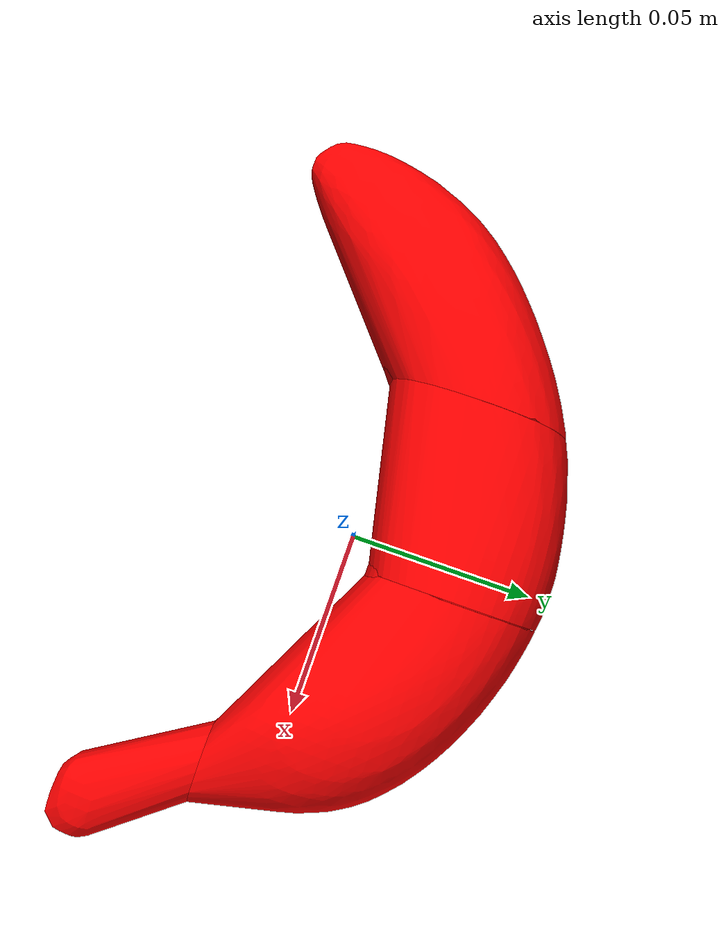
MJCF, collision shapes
<?xml version="1.0" ?>
<mujoco model="yellow_banana">
	<compiler meshdir="yellow_banana/meshes" texturedir="yellow_banana/textures" angle="radian" autolimits="true" balanceinertia="true" boundmass="0.000001" boundinertia="0.000001"/>
	<default>
		<default class="visual">
			<geom contype="0" conaffinity="0"/>
		</default>
		<default class="collision">
			<geom rgba="1.0 0.0 0.0 0.0"/>
		</default>
	</default>
	<asset>
		<mesh name="YellowBananaEndocarp" file="obj/YellowBananaEndocarp.obj" scale="1.0 1.0 1.0"/>
		<mesh name="YellowBananaEndocarp_001" file="stl/YellowBananaEndocarp_001.stl" scale="1.0 1.0 1.0"/>
		<mesh name="YellowBananaEndocarp_002" file="stl/YellowBananaEndocarp_002.stl" scale="1.0 1.0 1.0"/>
		<mesh name="YellowBananaEndocarp_003" file="stl/YellowBananaEndocarp_003.stl" scale="1.0 1.0 1.0"/>
		<mesh name="YellowBananaEndocarp_004" file="stl/YellowBananaEndocarp_004.stl" scale="1.0 1.0 1.0"/>
		<mesh name="YellowBananaExocarp" file="obj/YellowBananaExocarp.obj" scale="1.0 1.0 1.0"/>
		<mesh name="YellowBananaExocarp_001" file="stl/YellowBananaExocarp_001.stl" scale="1.0 1.0 1.0"/>
		<mesh name="YellowBananaExocarp_002" file="stl/YellowBananaExocarp_002.stl" scale="1.0 1.0 1.0"/>
		<mesh name="YellowBananaExocarp_003" file="stl/YellowBananaExocarp_003.stl" scale="1.0 1.0 1.0"/>
		<mesh name="YellowBananaExocarp_004" file="stl/YellowBananaExocarp_004.stl" scale="1.0 1.0 1.0"/>
		<mesh name="YellowBananaFlesh" file="obj/YellowBananaFlesh.obj" scale="1.0 1.0 1.0"/>
		<mesh name="YellowBananaFlesh_001" file="stl/YellowBananaFlesh_001.stl" scale="1.0 1.0 1.0"/>
		<mesh name="YellowBananaFlesh_002" file="stl/YellowBananaFlesh_002.stl" scale="1.0 1.0 1.0"/>
		<mesh name="YellowBananaFlesh_003" file="stl/YellowBananaFlesh_003.stl" scale="1.0 1.0 1.0"/>
		<material name="M_YellowBananaEndocarp" texture="T_YellowBananaEndocarp"/>
		<material name="M_YellowBananaExocarp" texture="T_YellowBananaExocarp"/>
		<material name="M_YellowBananaFlesh" texture="T_YellowBananaFlesh"/>
		<texture name="T_YellowBananaEndocarp" type="2d" file="T_YellowBananaEndocarp.png"/>
		<texture name="T_YellowBananaExocarp" type="2d" file="T_YellowBananaExocarp.png"/>
		<texture name="T_YellowBananaFlesh" type="2d" file="T_YellowBananaFlesh.png"/>
	</asset>
	<worldbody>
		<body name="yellow_banana" pos="0.0 0.0 0.0" quat="1.0 0.0 0.0 0.0">
			<body name="yellow_banana_endocarp" pos="0.0 0.0 0.0" quat="1.0 0.0 0.0 0.0">
				<inertial mass="0.003866082290187478" pos="-0.01240614801645279 0.013213612139225006 -0.0007500060019083321" quat="0.999386191368103 0.014309662394225597 -0.003567987121641636 0.03177691251039505" diaginertia="3.1374904665426584e-06 1.1440144589869305e-05 1.3253933502710424e-05"/>
				<geom name="YellowBananaEndocarp" type="mesh" pos="0.0 0.0 0.0" quat="1.0 0.0 0.0 0.0" mesh="YellowBananaEndocarp" material="M_YellowBananaEndocarp" class="visual"/>
				<geom name="YellowBananaEndocarp_001" type="mesh" pos="0.0 0.0 0.0" quat="1.0 0.0 0.0 0.0" mesh="YellowBananaEndocarp_001" class="collision"/>
				<geom name="YellowBananaEndocarp_002" type="mesh" pos="0.0 0.0 0.0" quat="1.0 0.0 0.0 0.0" mesh="YellowBananaEndocarp_002" class="collision"/>
				<geom name="YellowBananaEndocarp_003" type="mesh" pos="0.0 0.0 0.0" quat="1.0 0.0 0.0 0.0" mesh="YellowBananaEndocarp_003" class="collision"/>
				<geom name="YellowBananaEndocarp_004" type="mesh" pos="0.0 0.0 0.0" quat="1.0 0.0 0.0 0.0" mesh="YellowBananaEndocarp_004" class="collision"/>
			</body>
			<body name="yellow_banana_flesh" pos="0.0 0.0 0.0" quat="1.0 0.0 0.0 0.0">
				<inertial mass="0.16765236854553223" pos="-0.011863026767969131 0.016230249777436256 -0.00047982129035517573" quat="0.999794602394104 0.009690002538263798 -0.0033315131440758705 0.017485249787569046" diaginertia="0.00010836349247256294 0.00039412116166204214 0.00047479759086854756"/>
				<geom name="YellowBananaFlesh" type="mesh" pos="0.0 0.0 0.0" quat="1.0 0.0 0.0 0.0" mesh="YellowBananaFlesh" material="M_YellowBananaFlesh" class="visual"/>
				<geom name="YellowBananaFlesh_001" type="mesh" pos="0.0 0.0 0.0" quat="1.0 0.0 0.0 0.0" mesh="YellowBananaFlesh_001" class="collision"/>
				<geom name="YellowBananaFlesh_002" type="mesh" pos="0.0 0.0 0.0" quat="1.0 0.0 0.0 0.0" mesh="YellowBananaFlesh_002" class="collision"/>
				<geom name="YellowBananaFlesh_003" type="mesh" pos="0.0 0.0 0.0" quat="1.0 0.0 0.0 0.0" mesh="YellowBananaFlesh_003" class="collision"/>
			</body>
			<body name="yellow_banana_exocarp" pos="0.0 0.0 0.0" quat="1.0 0.0 0.0 0.0">
				<inertial mass="0.014691420830786228" pos="-0.0066825891844928265 0.00984877534210682 -0.001081103808246553" quat="0.9995599985122681 0.026058413088321686 0.0016423529013991356 -0.014072651974856853" diaginertia="1.3276352547109127e-05 4.834550782106817e-05 5.636810965370387e-05"/>
				<geom name="YellowBananaExocarp" type="mesh" pos="0.0 0.0 0.0" quat="1.0 0.0 0.0 0.0" mesh="YellowBananaExocarp" material="M_YellowBananaExocarp" class="visual"/>
				<geom name="YellowBananaExocarp_001" type="mesh" pos="0.0 0.0 0.0" quat="1.0 0.0 0.0 0.0" mesh="YellowBananaExocarp_001" class="collision"/>
				<geom name="YellowBananaExocarp_002" type="mesh" pos="0.0 0.0 0.0" quat="1.0 0.0 0.0 0.0" mesh="YellowBananaExocarp_002" class="collision"/>
				<geom name="YellowBananaExocarp_003" type="mesh" pos="0.0 0.0 0.0" quat="1.0 0.0 0.0 0.0" mesh="YellowBananaExocarp_003" class="collision"/>
				<geom name="YellowBananaExocarp_004" type="mesh" pos="0.0 0.0 0.0" quat="1.0 0.0 0.0 0.0" mesh="YellowBananaExocarp_004" class="collision"/>
			</body>
		</body>
	</worldbody>
	<equality/>
</mujoco>
